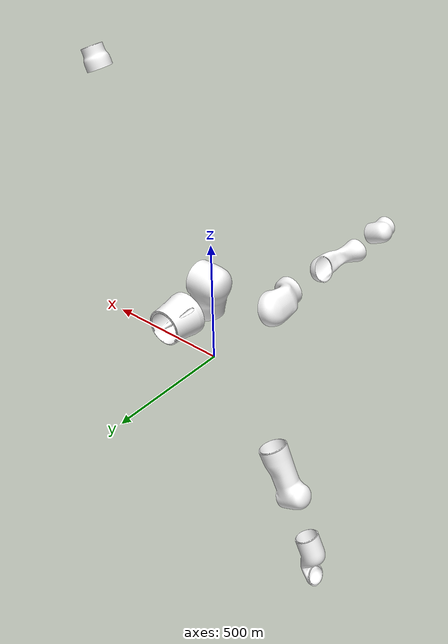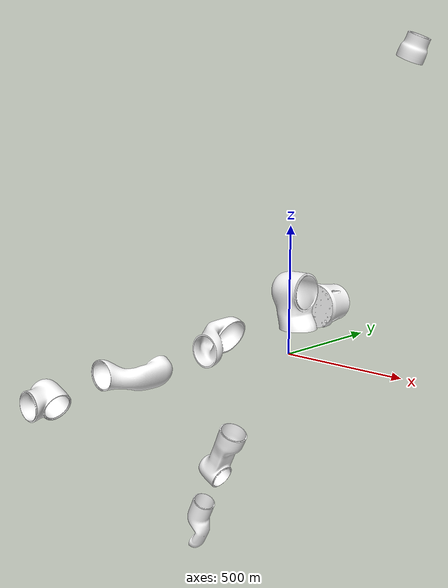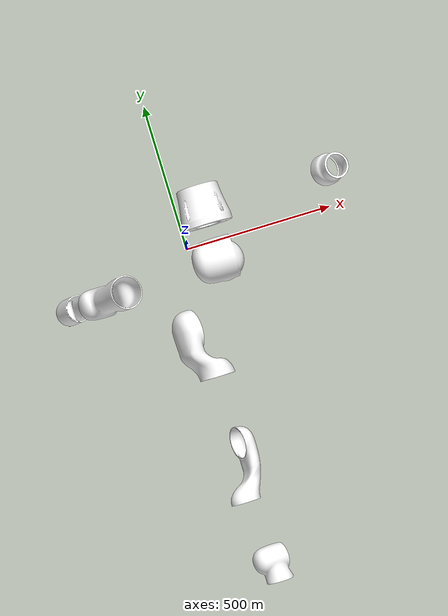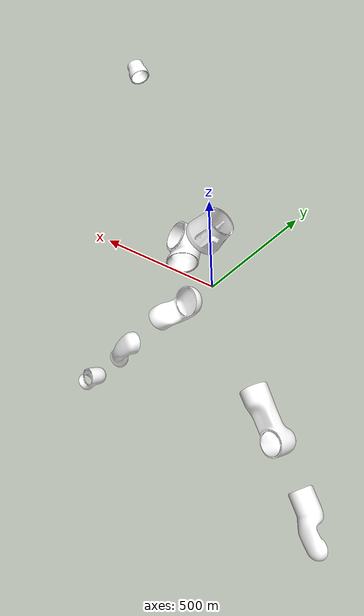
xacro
<?xml version="1.0"?>
<robot xmlns:xacro="http://www.ros.org/wiki/xacro" name="optimo">
    <xacro:arg name="initial_positions_file" default="initial_positions.yaml" />

    <!-- Import optimo urdf file -->
    <xacro:include filename="$(find optimo_description)/urdf/optimo.urdf" />

    <!-- Import control_xacro -->
    <xacro:include filename="optimo.ros2_control.xacro" />

    <xacro:optimo_ros2_control name="FakeSystem" initial_positions_file="$(arg initial_positions_file)"/>

</robot>

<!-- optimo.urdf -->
<!-- |    This document was autogenerated by xacro from optimo.urdf.xacro              | -->
<!-- |    EDITING THIS FILE BY HAND IS NOT RECOMMENDED                                 | -->
<robot name="optimo">
  <link name="optimo_base_link">
    </link>
  <joint name="optimo_base_joint" type="fixed">
    <parent link="optimo_base_link"/>
    <child link="optimo_link0"/>
    <origin rpy="0 0 0" xyz="0 0 0.27"/>
  </joint>
  <!-- Robot Links -->
  <link name="optimo_link0">
    <visual>
      <geometry>
        <mesh filename="file:///home/dk/workspaces/plato_ws/install/optimo_description/share/optimo_description/meshes/link0.stl"/>
      </geometry>
      <material name="LightGrey">
        <color rgba="0.999 0.999 0.999 1.0"/>
      </material>
    </visual>
    <collision>
      <geometry>
        <mesh filename="file:///home/dk/workspaces/plato_ws/install/optimo_description/share/optimo_description/meshes/col0.stl"/>
      </geometry>
    </collision>
    <inertial>
      <!-- Doesn't matter, just placeholder values -->
      <origin xyz="0 0 0"/>
      <mass value="1"/>
      <inertia ixx="0" ixy="0.0" ixz="0.0" iyy="0" iyz="0.0" izz="0"/>
    </inertial>
  </link>
  <link name="optimo_link1">
    <visual>
      <geometry>
        <sphere radius="0.01"/>
      </geometry>
      <material name="LightGrey">
        <color rgba="0.999 0.999 0.999 1.0"/>
      </material>
    </visual>
  </link>
  <link name="optimo_link1_passive">
    <visual>
      <geometry>
        <mesh filename="file:///home/dk/workspaces/plato_ws/install/optimo_description/share/optimo_description/meshes/link1.stl"/>
      </geometry>
      <material name="LightGrey">
        <color rgba="0.999 0.999 0.999 1.0"/>
      </material>
    </visual>
    <collision>
      <geometry>
        <mesh filename="file:///home/dk/workspaces/plato_ws/install/optimo_description/share/optimo_description/meshes/col1.stl"/>
      </geometry>
    </collision>
    <inertial>
      <origin xyz="0 -0.01635 0.01549"/>
      <mass value="4.152"/>
      <inertia ixx="0.01" ixy="0.000017" ixz="-.00001" iyy="0.007494" iyz="0.0000213" izz="0.009939"/>
    </inertial>
  </link>
  <link name="optimo_link2"/>
  <link name="optimo_link2_passive">
    <visual>
      <geometry>
        <mesh filename="file:///home/dk/workspaces/plato_ws/install/optimo_description/share/optimo_description/meshes/link2.stl"/>
      </geometry>
      <material name="LightGrey">
        <color rgba="0.999 0.999 0.999 1.0"/>
      </material>
    </visual>
    <collision>
      <geometry>
        <mesh filename="file:///home/dk/workspaces/plato_ws/install/optimo_description/share/optimo_description/meshes/col2.stl"/>
      </geometry>
    </collision>
    <inertial>
      <origin rpy="0 0 3.1415926518" xyz="0 -0.05063 0.05677"/>
      <mass value="1.72"/>
      <inertia ixx="0.005694" ixy="0" ixz="0" iyy="0.005902" iyz="-0.001353" izz="0.002415"/>
    </inertial>
  </link>
  <link name="optimo_link3"/>
  <link name="optimo_link3_passive">
    <visual>
      <geometry>
        <mesh filename="file:///home/dk/workspaces/plato_ws/install/optimo_description/share/optimo_description/meshes/link3.stl"/>
      </geometry>
      <material name="LightGrey">
        <color rgba="0.999 0.999 0.999 1.0"/>
      </material>
    </visual>
    <collision>
      <geometry>
        <mesh filename="file:///home/dk/workspaces/plato_ws/install/optimo_description/share/optimo_description/meshes/col3.stl"/>
      </geometry>
    </collision>
    <inertial>
      <!-- Inertia values taken from yaml, but these seem like they cannot be accurate...-->
      <origin xyz="-0.000039 .098 0"/>
      <mass value="4.310"/>
      <inertia ixx="0.012989" ixy="-0.000015" ixz="-.000003" iyy="0.002584" iyz="0.000632" izz="0.01305"/>
    </inertial>
  </link>
  <link name="optimo_link4"/>
  <link name="optimo_link4_passive">
    <origin rpy="0 0 0" xyz="0 0 0"/>
    <visual>
      <geometry>
        <mesh filename="file:///home/dk/workspaces/plato_ws/install/optimo_description/share/optimo_description/meshes/link4.stl"/>
      </geometry>
      <material name="LightGrey">
        <color rgba="0.999 0.999 0.999 1.0"/>
      </material>
    </visual>
    <collision>
      <geometry>
        <mesh filename="file:///home/dk/workspaces/plato_ws/install/optimo_description/share/optimo_description/meshes/col4.stl"/>
      </geometry>
    </collision>
    <inertial>
      <origin rpy="0 0 0" xyz="-.00001 0.048852 0.0688"/>
      <mass value="1.09"/>
      <inertia ixx="0.007" ixy="-3.989e-7" ixz="0.002" iyy="0.007" iyz="-1.061e-6" izz="0.002"/>
    </inertial>
  </link>
  <link name="optimo_link5"/>
  <link name="optimo_link5_passive">
    <visual>
      <geometry>
        <mesh filename="file:///home/dk/workspaces/plato_ws/install/optimo_description/share/optimo_description/meshes/link5.stl"/>
      </geometry>
      <material name="LightGrey">
        <color rgba="0.999 0.999 0.999 1.0"/>
      </material>
    </visual>
    <collision>
      <geometry>
        <mesh filename="file:///home/dk/workspaces/plato_ws/install/optimo_description/share/optimo_description/meshes/col5.stl"/>
      </geometry>
    </collision>
    <inertial>
      <origin xyz=".001262 0.085 0.008"/>
      <mass value="2.23"/>
      <inertia ixx="0.000932" ixy="0" ixz="0" iyy="0.000802" iyz="-0.000030" izz="0.000733"/>
    </inertial>
  </link>
  <link name="optimo_link6"/>
  <link name="optimo_link6_passive">
    <visual>
      <geometry>
        <mesh filename="file:///home/dk/workspaces/plato_ws/install/optimo_description/share/optimo_description/meshes/link6.stl"/>
      </geometry>
      <material name="LightGrey">
        <color rgba="0.999 0.999 0.999 1.0"/>
      </material>
    </visual>
    <collision>
      <geometry>
        <mesh filename="file:///home/dk/workspaces/plato_ws/install/optimo_description/share/optimo_description/meshes/col6.stl"/>
      </geometry>
    </collision>
    <inertial>
      <origin xyz="0 -0.00007 0.010855"/>
      <mass value="1.138"/>
      <inertia ixx="0.000932" ixy="0" ixz="0" iyy="0.000802" iyz="-0.000030" izz="0.0007325"/>
    </inertial>
  </link>
  <link name="optimo_link7"/>
  <link name="optimo_link7_passive">
    <visual>
      <geometry>
        <mesh filename="file:///home/dk/workspaces/plato_ws/install/optimo_description/share/optimo_description/meshes/link7.stl"/>
      </geometry>
      <material name="LightGrey">
        <color rgba="0.999 0.999 0.999 1.0"/>
      </material>
    </visual>
    <collision>
      <geometry>
        <mesh filename="file:///home/dk/workspaces/plato_ws/install/optimo_description/share/optimo_description/meshes/col7.stl"/>
      </geometry>
    </collision>
    <inertial>
      <origin xyz="0 0 0"/>
      <mass value="1"/>
      <inertia ixx="0.005541" ixy=".000045" ixz="0.000077" iyy="0.004779" iyz="0.000043" izz="0.001723"/>
    </inertial>
  </link>
  <!-- Robot Joints -->
  <joint name="optimo_joint1" type="revolute">
    <origin rpy="0 0 0" xyz="0 0 0"/>
    <parent link="optimo_link0"/>
    <child link="optimo_link1"/>
    <axis xyz="0 0 1"/>
    <limit effort="79" lower="-2.86233997164" upper="2.91469984917" velocity="10"/>
  </joint>
  <joint name="optimo_joint1_passive" type="fixed">
    <origin rpy="1.5707963267948966 0 0" xyz="0 0 0"/>
    <parent link="optimo_link1"/>
    <child link="optimo_link1_passive"/>
  </joint>
  <joint name="optimo_joint2" type="revolute">
    <origin rpy="0 0 0" xyz="0 0 0"/>
    <parent link="optimo_link1_passive"/>
    <child link="optimo_link2"/>
    <axis xyz="0 0 1"/>
    <limit effort="95" lower="1.0471975506" upper="4.3633231275" velocity="10"/>
  </joint>
  <joint name="optimo_joint2_passive" type="fixed">
    <origin rpy="1.5707963267948966 0 0" xyz="0 0 0"/>
    <parent link="optimo_link2"/>
    <child link="optimo_link2_passive"/>
  </joint>
  <joint name="optimo_joint3" type="revolute">
    <origin rpy="0 0 0" xyz="0 0 0.4"/>
    <parent link="optimo_link2_passive"/>
    <child link="optimo_link3"/>
    <axis xyz="0 0 1"/>
    <limit effort="32" lower="-2.91469984917" upper="2.84488667913" velocity="10"/>
  </joint>
  <joint name="optimo_joint3_passive" type="fixed">
    <origin rpy="-1.5707963267948966 0 0" xyz="0 0 0"/>
    <parent link="optimo_link3"/>
    <child link="optimo_link3_passive"/>
  </joint>
  <joint name="optimo_joint4" type="revolute">
    <origin rpy="0 0 0" xyz="0 0 0"/>
    <parent link="optimo_link3_passive"/>
    <child link="optimo_link4"/>
    <axis xyz="0 0 1"/>
    <limit effort="40" lower="-2.53072741395" upper="2.53072741395" velocity="10"/>
  </joint>
  <joint name="optimo_joint4_passive" type="fixed">
    <origin rpy="1.5707963267948966 0 0" xyz="0 0 0"/>
    <parent link="optimo_link4"/>
    <child link="optimo_link4_passive"/>
  </joint>
  <joint name="optimo_joint5" type="revolute">
    <origin rpy="0 0 0" xyz="0 0 0.4"/>
    <parent link="optimo_link4_passive"/>
    <child link="optimo_link5"/>
    <axis xyz="0 0 1"/>
    <limit effort="15" lower="-2.9670597267" upper="2.9670597267" velocity="10"/>
  </joint>
  <joint name="optimo_joint5_passive" type="fixed">
    <origin rpy="-1.5707963267948966 0 0" xyz="0 0 0"/>
    <parent link="optimo_link5"/>
    <child link="optimo_link5_passive"/>
  </joint>
  <joint name="optimo_joint6" type="revolute">
    <origin rpy="0 0 0" xyz="0 0 0"/>
    <parent link="optimo_link5_passive"/>
    <child link="optimo_link6"/>
    <axis xyz="0 0 1"/>
    <limit effort="15" lower="-2.0943951012" upper="2.0943951012" velocity="10"/>
  </joint>
  <joint name="optimo_joint6_passive" type="fixed">
    <origin rpy="1.5707963267948966 0 0" xyz="0 0 0"/>
    <parent link="optimo_link6"/>
    <child link="optimo_link6_passive"/>
  </joint>
  <joint name="optimo_joint7" type="revolute">
    <origin rpy="0 0 0" xyz="0 0 0"/>
    <parent link="optimo_link6_passive"/>
    <child link="optimo_link7"/>
    <axis xyz="0 0 1"/>
    <limit effort="15" lower="-2.65290046152" upper="3.28121899188" velocity="10"/>
  </joint>
  <joint name="optimo_joint7_passive" type="fixed">
    <origin rpy="1.5707963267948966 0 0" xyz="0 0 0"/>
    <parent link="optimo_link7"/>
    <child link="optimo_link7_passive"/>
  </joint>
</robot>
